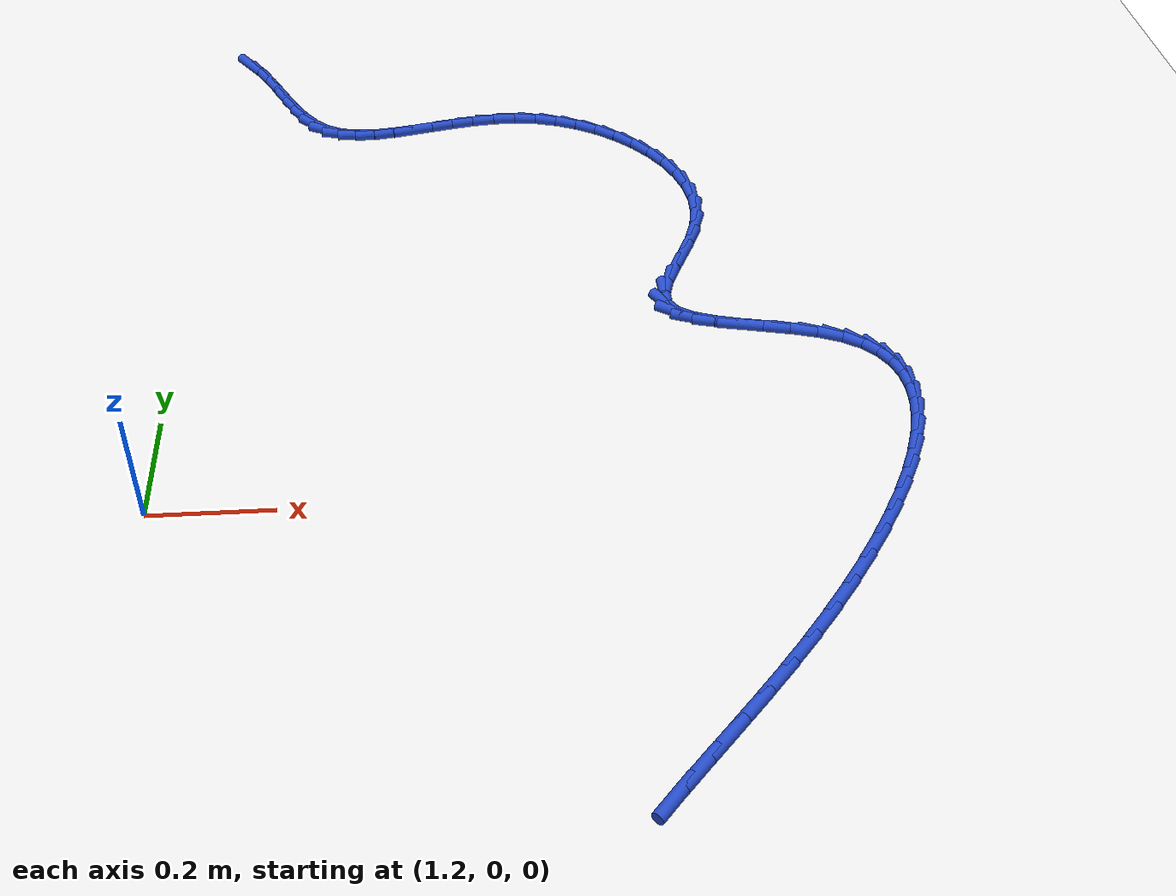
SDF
<sdf version="1.6">
 <world name="default">
  <model name="ground_plane">
   <static>1</static>
   <link name="link">
    <collision name="collision">
     <geometry><plane><normal>0 0 1</normal><size>100 100</size></plane></geometry>
     <surface><friction><ode><mu>100</mu><mu2>50</mu2></ode></friction></surface>
    </collision>
    <visual name="visual">
     <cast_shadows>0</cast_shadows>
     <geometry><plane><normal>0 0 1</normal><size>100 100</size></plane></geometry>
     <material>
      <script><uri>file://media/materials/scripts/gazebo.material</uri><name>Gazebo/WhiteGlow</name></script>
     </material>
    </visual>
   </link>
  </model>
  <model name="line">
   <link name="link_51">
    <pose>1.2606121515067468 1.3050934689308822 0.01 0 1.57 -0.9377124161625547</pose>
    <collision name="collision">
     <geometry><cylinder><radius>0.01</radius><length>0.08</length></cylinder></geometry>
    </collision>
    <visual name="visual">
     <material>
      <script><name>Gazebo/Blue</name><uri>file://media/materials/scripts/gazebo.material</uri></script>
     </material>
     <geometry><cylinder><radius>0.01</radius><length>0.08</length></cylinder></geometry>
    </visual>
   </link>
   <link name="link_52">
    <pose>1.2848149451744901 1.2721128387040617 0.01 0 1.57 -1.0303241424602596</pose>
    <collision name="collision">
     <geometry><cylinder><radius>0.01</radius><length>0.08</length></cylinder></geometry>
    </collision>
    <visual name="visual">
     <material>
      <script><name>Gazebo/Blue</name><uri>file://media/materials/scripts/gazebo.material</uri></script>
     </material>
     <geometry><cylinder><radius>0.01</radius><length>0.08</length></cylinder></geometry>
    </visual>
   </link>
   <link name="link_53">
    <pose>1.3068357372475137 1.235415900966877 0.01 0 1.57 -1.0804538263771792</pose>
    <collision name="collision">
     <geometry><cylinder><radius>0.01</radius><length>0.08</length></cylinder></geometry>
    </collision>
    <visual name="visual">
     <material>
      <script><name>Gazebo/Blue</name><uri>file://media/materials/scripts/gazebo.material</uri></script>
     </material>
     <geometry><cylinder><radius>0.01</radius><length>0.08</length></cylinder></geometry>
    </visual>
   </link>
   <link name="link_54">
    <pose>1.3274808480455298 1.1967422003924517 0.01 0 1.57 -1.0944771639709912</pose>
    <collision name="collision">
     <geometry><cylinder><radius>0.01</radius><length>0.08</length></cylinder></geometry>
    </collision>
    <visual name="visual">
     <material>
      <script><name>Gazebo/Blue</name><uri>file://media/materials/scripts/gazebo.material</uri></script>
     </material>
     <geometry><cylinder><radius>0.01</radius><length>0.08</length></cylinder></geometry>
    </visual>
   </link>
   <link name="link_55">
    <pose>1.3475565978882513 1.1578312816539087 0.01 0 1.57 -1.0733465048747826</pose>
    <collision name="collision">
     <geometry><cylinder><radius>0.01</radius><length>0.08</length></cylinder></geometry>
    </collision>
    <visual name="visual">
     <material>
      <script><name>Gazebo/Blue</name><uri>file://media/materials/scripts/gazebo.material</uri></script>
     </material>
     <geometry><cylinder><radius>0.01</radius><length>0.08</length></cylinder></geometry>
    </visual>
   </link>
   <link name="link_56">
    <pose>1.3678693070953918 1.1204226894243716 0.01 0 1.57 -1.0121593756264433</pose>
    <collision name="collision">
     <geometry><cylinder><radius>0.01</radius><length>0.08</length></cylinder></geometry>
    </collision>
    <visual name="visual">
     <material>
      <script><name>Gazebo/Blue</name><uri>file://media/materials/scripts/gazebo.material</uri></script>
     </material>
     <geometry><cylinder><radius>0.01</radius><length>0.08</length></cylinder></geometry>
    </visual>
   </link>
   <link name="link_57">
    <pose>1.3892252959866644 1.0862559683769637 0.01 0 1.57 -0.8990429343614283</pose>
    <collision name="collision">
     <geometry><cylinder><radius>0.01</radius><length>0.08</length></cylinder></geometry>
    </collision>
    <visual name="visual">
     <material>
      <script><name>Gazebo/Blue</name><uri>file://media/materials/scripts/gazebo.material</uri></script>
     </material>
     <geometry><cylinder><radius>0.01</radius><length>0.08</length></cylinder></geometry>
    </visual>
   </link>
   <link name="link_58">
    <pose>1.412430884881781 1.0570706631848086 0.01 0 1.57 -0.7152165748143586</pose>
    <collision name="collision">
     <geometry><cylinder><radius>0.01</radius><length>0.08</length></cylinder></geometry>
    </collision>
    <visual name="visual">
     <material>
      <script><name>Gazebo/Blue</name><uri>file://media/materials/scripts/gazebo.material</uri></script>
     </material>
     <geometry><cylinder><radius>0.01</radius><length>0.08</length></cylinder></geometry>
    </visual>
   </link>
   <link name="link_59">
    <pose>1.4382923941004557 1.0346063185210292 0.01 0 1.57 -0.45557709242875116</pose>
    <collision name="collision">
     <geometry><cylinder><radius>0.01</radius><length>0.08</length></cylinder></geometry>
    </collision>
    <visual name="visual">
     <material>
      <script><name>Gazebo/Blue</name><uri>file://media/materials/scripts/gazebo.material</uri></script>
     </material>
     <geometry><cylinder><radius>0.01</radius><length>0.08</length></cylinder></geometry>
    </visual>
   </link>
   <link name="link_60">
    <pose>1.467500588903379 1.0202956997544859 0.01 0 1.57 -0.20590621221302952</pose>
    <collision name="collision">
     <geometry><cylinder><radius>0.01</radius><length>0.08</length></cylinder></geometry>
    </collision>
    <visual name="visual">
     <material>
      <script><name>Gazebo/Blue</name><uri>file://media/materials/scripts/gazebo.material</uri></script>
     </material>
     <geometry><cylinder><radius>0.01</radius><length>0.08</length></cylinder></geometry>
    </visual>
   </link>
   <link name="link_61">
    <pose>1.499971093541033 1.0135137028554233 0.01 0 1.57 -0.020512684227536018</pose>
    <collision name="collision">
     <geometry><cylinder><radius>0.01</radius><length>0.08</length></cylinder></geometry>
    </collision>
    <visual name="visual">
     <material>
      <script><name>Gazebo/Blue</name><uri>file://media/materials/scripts/gazebo.material</uri></script>
     </material>
     <geometry><cylinder><radius>0.01</radius><length>0.08</length></cylinder></geometry>
    </visual>
   </link>
   <link name="link_62">
    <pose>1.5353007443059836 1.0127888952234068 0.01 0 1.57 0.10176123029134934</pose>
    <collision name="collision">
     <geometry><cylinder><radius>0.01</radius><length>0.08</length></cylinder></geometry>
    </collision>
    <visual name="visual">
     <material>
      <script><name>Gazebo/Blue</name><uri>file://media/materials/scripts/gazebo.material</uri></script>
     </material>
     <geometry><cylinder><radius>0.01</radius><length>0.08</length></cylinder></geometry>
    </visual>
   </link>
   <link name="link_63">
    <pose>1.5730853946899688 1.0166472350866085 0.01 0 1.57 0.17315389826971428</pose>
    <collision name="collision">
     <geometry><cylinder><radius>0.01</radius><length>0.08</length></cylinder></geometry>
    </collision>
    <visual name="visual">
     <material>
      <script><name>Gazebo/Blue</name><uri>file://media/materials/scripts/gazebo.material</uri></script>
     </material>
     <geometry><cylinder><radius>0.01</radius><length>0.08</length></cylinder></geometry>
    </visual>
   </link>
   <link name="link_64">
    <pose>1.612920898184726 1.0236146806732014 0.01 0 1.57 0.20447989285121526</pose>
    <collision name="collision">
     <geometry><cylinder><radius>0.01</radius><length>0.08</length></cylinder></geometry>
    </collision>
    <visual name="visual">
     <material>
      <script><name>Gazebo/Blue</name><uri>file://media/materials/scripts/gazebo.material</uri></script>
     </material>
     <geometry><cylinder><radius>0.01</radius><length>0.08</length></cylinder></geometry>
    </visual>
   </link>
   <link name="link_65">
    <pose>1.6544031082819934 1.032217190211358 0.01 0 1.57 0.2023098656296809</pose>
    <collision name="collision">
     <geometry><cylinder><radius>0.01</radius><length>0.08</length></cylinder></geometry>
    </collision>
    <visual name="visual">
     <material>
      <script><name>Gazebo/Blue</name><uri>file://media/materials/scripts/gazebo.material</uri></script>
     </material>
     <geometry><cylinder><radius>0.01</radius><length>0.08</length></cylinder></geometry>
    </visual>
   </link>
   <link name="link_66">
    <pose>1.6971278784735082 1.0409807219292506 0.01 0 1.57 0.1693888432417191</pose>
    <collision name="collision">
     <geometry><cylinder><radius>0.01</radius><length>0.08</length></cylinder></geometry>
    </collision>
    <visual name="visual">
     <material>
      <script><name>Gazebo/Blue</name><uri>file://media/materials/scripts/gazebo.material</uri></script>
     </material>
     <geometry><cylinder><radius>0.01</radius><length>0.08</length></cylinder></geometry>
    </visual>
   </link>
   <link name="link_67">
    <pose>1.7406910622510083 1.0484312340550526 0.01 0 1.57 0.10559937835502822</pose>
    <collision name="collision">
     <geometry><cylinder><radius>0.01</radius><length>0.08</length></cylinder></geometry>
    </collision>
    <visual name="visual">
     <material>
      <script><name>Gazebo/Blue</name><uri>file://media/materials/scripts/gazebo.material</uri></script>
     </material>
     <geometry><cylinder><radius>0.01</radius><length>0.08</length></cylinder></geometry>
    </visual>
   </link>
   <link name="link_68">
    <pose>1.7846885131062316 1.0530946848169362 0.01 0 1.57 0.009138283427357157</pose>
    <collision name="collision">
     <geometry><cylinder><radius>0.01</radius><length>0.08</length></cylinder></geometry>
    </collision>
    <visual name="visual">
     <material>
      <script><name>Gazebo/Blue</name><uri>file://media/materials/scripts/gazebo.material</uri></script>
     </material>
     <geometry><cylinder><radius>0.01</radius><length>0.08</length></cylinder></geometry>
    </visual>
   </link>
   <link name="link_69">
    <pose>1.8287160845309156 1.0534970324430741 0.01 0 1.57 -0.12030329682297947</pose>
    <collision name="collision">
     <geometry><cylinder><radius>0.01</radius><length>0.08</length></cylinder></geometry>
    </collision>
    <visual name="visual">
     <material>
      <script><name>Gazebo/Blue</name><uri>file://media/materials/scripts/gazebo.material</uri></script>
     </material>
     <geometry><cylinder><radius>0.01</radius><length>0.08</length></cylinder></geometry>
    </visual>
   </link>
   <link name="link_70">
    <pose>1.8723631310332869 1.04822066953003 0.01 0 1.57 -0.25961076998670213</pose>
    <collision name="collision">
     <geometry><cylinder><radius>0.01</radius><length>0.08</length></cylinder></geometry>
    </collision>
    <visual name="visual">
     <material>
      <script><name>Gazebo/Blue</name><uri>file://media/materials/scripts/gazebo.material</uri></script>
     </material>
     <geometry><cylinder><radius>0.01</radius><length>0.08</length></cylinder></geometry>
    </visual>
   </link>
   <link name="link_71">
    <pose>1.9151014069432761 1.0368691778762829 0.01 0 1.57 -0.3900071101279612</pose>
    <collision name="collision">
     <geometry><cylinder><radius>0.01</radius><length>0.08</length></cylinder></geometry>
    </collision>
    <visual name="visual">
     <material>
      <script><name>Gazebo/Blue</name><uri>file://media/materials/scripts/gazebo.material</uri></script>
     </material>
     <geometry><cylinder><radius>0.01</radius><length>0.08</length></cylinder></geometry>
    </visual>
   </link>
   <link name="link_72">
    <pose>1.9563004473098067 1.0199337674072881 0.01 0 1.57 -0.5132935983335062</pose>
    <collision name="collision">
     <geometry><cylinder><radius>0.01</radius><length>0.08</length></cylinder></geometry>
    </collision>
    <visual name="visual">
     <material>
      <script><name>Gazebo/Blue</name><uri>file://media/materials/scripts/gazebo.material</uri></script>
     </material>
     <geometry><cylinder><radius>0.01</radius><length>0.08</length></cylinder></geometry>
    </visual>
   </link>
   <link name="link_73">
    <pose>1.9953263833367356 0.997935205570227 0.01 0 1.57 -0.6323963527957505</pose>
    <collision name="collision">
     <geometry><cylinder><radius>0.01</radius><length>0.08</length></cylinder></geometry>
    </collision>
    <visual name="visual">
     <material>
      <script><name>Gazebo/Blue</name><uri>file://media/materials/scripts/gazebo.material</uri></script>
     </material>
     <geometry><cylinder><radius>0.01</radius><length>0.08</length></cylinder></geometry>
    </visual>
   </link>
   <link name="link_74">
    <pose>2.0315453462279214 0.9713942598122807 0.01 0 1.57 -0.7504339712511151</pose>
    <collision name="collision">
     <geometry><cylinder><radius>0.01</radius><length>0.08</length></cylinder></geometry>
    </collision>
    <visual name="visual">
     <material>
      <script><name>Gazebo/Blue</name><uri>file://media/materials/scripts/gazebo.material</uri></script>
     </material>
     <geometry><cylinder><radius>0.01</radius><length>0.08</length></cylinder></geometry>
    </visual>
   </link>
   <link name="link_75">
    <pose>2.064323467187221 0.9408316975806303 0.01 0 1.57 -0.870586939127695</pose>
    <collision name="collision">
     <geometry><cylinder><radius>0.01</radius><length>0.08</length></cylinder></geometry>
    </collision>
    <visual name="visual">
     <material>
      <script><name>Gazebo/Blue</name><uri>file://media/materials/scripts/gazebo.material</uri></script>
     </material>
     <geometry><cylinder><radius>0.01</radius><length>0.08</length></cylinder></geometry>
    </visual>
   </link>
   <link name="link_76">
    <pose>2.093026877418492 0.9067682863224578 0.01 0 1.57 -0.9960062003698397</pose>
    <collision name="collision">
     <geometry><cylinder><radius>0.01</radius><length>0.08</length></cylinder></geometry>
    </collision>
    <visual name="visual">
     <material>
      <script><name>Gazebo/Blue</name><uri>file://media/materials/scripts/gazebo.material</uri></script>
     </material>
     <geometry><cylinder><radius>0.01</radius><length>0.08</length></cylinder></geometry>
    </visual>
   </link>
   <link name="link_77">
    <pose>2.117021708125594 0.8697247934849438 0.01 0 1.57 -1.1296524678501003</pose>
    <collision name="collision">
     <geometry><cylinder><radius>0.01</radius><length>0.08</length></cylinder></geometry>
    </collision>
    <visual name="visual">
     <material>
      <script><name>Gazebo/Blue</name><uri>file://media/materials/scripts/gazebo.material</uri></script>
     </material>
     <geometry><cylinder><radius>0.01</radius><length>0.08</length></cylinder></geometry>
    </visual>
   </link>
   <link name="link_78">
    <pose>2.1356740905123837 0.8302219865152702 0.01 0 1.57 -1.2739541577825026</pose>
    <collision name="collision">
     <geometry><cylinder><radius>0.01</radius><length>0.08</length></cylinder></geometry>
    </collision>
    <visual name="visual">
     <material>
      <script><name>Gazebo/Blue</name><uri>file://media/materials/scripts/gazebo.material</uri></script>
     </material>
     <geometry><cylinder><radius>0.01</radius><length>0.08</length></cylinder></geometry>
    </visual>
   </link>
   <link name="link_79">
    <pose>2.148350155782719 0.788780632860618 0.01 0 1.57 -1.4301995120350826</pose>
    <collision name="collision">
     <geometry><cylinder><radius>0.01</radius><length>0.08</length></cylinder></geometry>
    </collision>
    <visual name="visual">
     <material>
      <script><name>Gazebo/Blue</name><uri>file://media/materials/scripts/gazebo.material</uri></script>
     </material>
     <geometry><cylinder><radius>0.01</radius><length>0.08</length></cylinder></geometry>
    </visual>
   </link>
   <link name="link_80">
    <pose>2.154416035140458 0.7459214999681686 0.01 0 1.57 1.5438768905614026</pose>
    <collision name="collision">
     <geometry><cylinder><radius>0.01</radius><length>0.08</length></cylinder></geometry>
    </collision>
    <visual name="visual">
     <material>
      <script><name>Gazebo/Blue</name><uri>file://media/materials/scripts/gazebo.material</uri></script>
     </material>
     <geometry><cylinder><radius>0.01</radius><length>0.08</length></cylinder></geometry>
    </visual>
   </link>
   <link name="link_81">
    <pose>2.153237859789458 0.7021653552851034 0.01 0 1.57 1.3686569108938833</pose>
    <collision name="collision">
     <geometry><cylinder><radius>0.01</radius><length>0.08</length></cylinder></geometry>
    </collision>
    <visual name="visual">
     <material>
      <script><name>Gazebo/Blue</name><uri>file://media/materials/scripts/gazebo.material</uri></script>
     </material>
     <geometry><cylinder><radius>0.01</radius><length>0.08</length></cylinder></geometry>
    </visual>
   </link>
   <link name="link_82">
    <pose>2.1441937126423034 0.6580342889850999 0.01 0 1.57 1.2171864026832881</pose>
    <collision name="collision">
     <geometry><cylinder><radius>0.01</radius><length>0.08</length></cylinder></geometry>
    </collision>
    <visual name="visual">
     <material>
      <script><name>Gazebo/Blue</name><uri>file://media/materials/scripts/gazebo.material</uri></script>
     </material>
     <geometry><cylinder><radius>0.01</radius><length>0.08</length></cylinder></geometry>
    </visual>
   </link>
   <link name="link_83">
    <pose>2.1280133832654693 0.6141999881110124 0.01 0 1.57 1.1314763735763547</pose>
    <collision name="collision">
     <geometry><cylinder><radius>0.01</radius><length>0.08</length></cylinder></geometry>
    </collision>
    <visual name="visual">
     <material>
      <script><name>Gazebo/Blue</name><uri>file://media/materials/scripts/gazebo.material</uri></script>
     </material>
     <geometry><cylinder><radius>0.01</radius><length>0.08</length></cylinder></geometry>
    </visual>
   </link>
   <link name="link_84">
    <pose>2.1080025502466775 0.5716192200016408 0.01 0 1.57 1.1056179926656773</pose>
    <collision name="collision">
     <geometry><cylinder><radius>0.01</radius><length>0.08</length></cylinder></geometry>
    </collision>
    <visual name="visual">
     <material>
      <script><name>Gazebo/Blue</name><uri>file://media/materials/scripts/gazebo.material</uri></script>
     </material>
     <geometry><cylinder><radius>0.01</radius><length>0.08</length></cylinder></geometry>
    </visual>
   </link>
   <link name="link_85">
    <pose>2.087756075524592 0.5312807566646915 0.01 0 1.57 1.143716420703692</pose>
    <collision name="collision">
     <geometry><cylinder><radius>0.01</radius><length>0.08</length></cylinder></geometry>
    </collision>
    <visual name="visual">
     <material>
      <script><name>Gazebo/Blue</name><uri>file://media/materials/scripts/gazebo.material</uri></script>
     </material>
     <geometry><cylinder><radius>0.01</radius><length>0.08</length></cylinder></geometry>
    </visual>
   </link>
   <link name="link_86">
    <pose>2.070868821037877 0.49417337010787293 0.01 0 1.57 1.2774740294516247</pose>
    <collision name="collision">
     <geometry><cylinder><radius>0.01</radius><length>0.08</length></cylinder></geometry>
    </collision>
    <visual name="visual">
     <material>
      <script><name>Gazebo/Blue</name><uri>file://media/materials/scripts/gazebo.material</uri></script>
     </material>
     <geometry><cylinder><radius>0.01</radius><length>0.08</length></cylinder></geometry>
    </visual>
   </link>
   <link name="link_87">
    <pose>2.0609356487251964 0.46128583233889275 0.01 0 1.57 -1.5485530344239646</pose>
    <collision name="collision">
     <geometry><cylinder><radius>0.01</radius><length>0.08</length></cylinder></geometry>
    </collision>
    <visual name="visual">
     <material>
      <script><name>Gazebo/Blue</name><uri>file://media/materials/scripts/gazebo.material</uri></script>
     </material>
     <geometry><cylinder><radius>0.01</radius><length>0.08</length></cylinder></geometry>
    </visual>
   </link>
   <link name="link_88">
    <pose>2.061551420525215 0.4336069153654584 0.01 0 1.57 -0.9916579685379145</pose>
    <collision name="collision">
     <geometry><cylinder><radius>0.01</radius><length>0.08</length></cylinder></geometry>
    </collision>
    <visual name="visual">
     <material>
      <script><name>Gazebo/Blue</name><uri>file://media/materials/scripts/gazebo.material</uri></script>
     </material>
     <geometry><cylinder><radius>0.01</radius><length>0.08</length></cylinder></geometry>
    </visual>
   </link>
   <link name="link_89">
    <pose>2.07573628310556 0.41191545490653836 0.01 0 1.57 -0.5540136928658005</pose>
    <collision name="collision">
     <geometry><cylinder><radius>0.01</radius><length>0.08</length></cylinder></geometry>
    </collision>
    <visual name="visual">
     <material>
      <script><name>Gazebo/Blue</name><uri>file://media/materials/scripts/gazebo.material</uri></script>
     </material>
     <geometry><cylinder><radius>0.01</radius><length>0.08</length></cylinder></geometry>
    </visual>
   </link>
   <link name="link_90">
    <pose>2.1023302421599177 0.3954633335502112 0.01 0 1.57 -0.3375984378309357</pose>
    <collision name="collision">
     <geometry><cylinder><radius>0.01</radius><length>0.08</length></cylinder></geometry>
    </collision>
    <visual name="visual">
     <material>
      <script><name>Gazebo/Blue</name><uri>file://media/materials/scripts/gazebo.material</uri></script>
     </material>
     <geometry><cylinder><radius>0.01</radius><length>0.08</length></cylinder></geometry>
    </visual>
   </link>
   <link name="link_91">
    <pose>2.138325790741731 0.38282756066186796 0.01 0 1.57 -0.2371919191290258</pose>
    <collision name="collision">
     <geometry><cylinder><radius>0.01</radius><length>0.08</length></cylinder></geometry>
    </collision>
    <visual name="visual">
     <material>
      <script><name>Gazebo/Blue</name><uri>file://media/materials/scripts/gazebo.material</uri></script>
     </material>
     <geometry><cylinder><radius>0.01</radius><length>0.08</length></cylinder></geometry>
    </visual>
   </link>
   <link name="link_92">
    <pose>2.1807072509182146 0.37258216084799284 0.01 0 1.57 -0.20014012646399781</pose>
    <collision name="collision">
     <geometry><cylinder><radius>0.01</radius><length>0.08</length></cylinder></geometry>
    </collision>
    <visual name="visual">
     <material>
      <script><name>Gazebo/Blue</name><uri>file://media/materials/scripts/gazebo.material</uri></script>
     </material>
     <geometry><cylinder><radius>0.01</radius><length>0.08</length></cylinder></geometry>
    </visual>
   </link>
   <link name="link_93">
    <pose>2.226458944756585 0.3633011587150703 0.01 0 1.57 -0.20824379675701934</pose>
    <collision name="collision">
     <geometry><cylinder><radius>0.01</radius><length>0.08</length></cylinder></geometry>
    </collision>
    <visual name="visual">
     <material>
      <script><name>Gazebo/Blue</name><uri>file://media/materials/scripts/gazebo.material</uri></script>
     </material>
     <geometry><cylinder><radius>0.01</radius><length>0.08</length></cylinder></geometry>
    </visual>
   </link>
   <link name="link_94">
    <pose>2.272565194324058 0.3535585788695846 0.01 0 1.57 -0.26156413203831097</pose>
    <collision name="collision">
     <geometry><cylinder><radius>0.01</radius><length>0.08</length></cylinder></geometry>
    </collision>
    <visual name="visual">
     <material>
      <script><name>Gazebo/Blue</name><uri>file://media/materials/scripts/gazebo.material</uri></script>
     </material>
     <geometry><cylinder><radius>0.01</radius><length>0.08</length></cylinder></geometry>
    </visual>
   </link>
   <link name="link_95">
    <pose>2.3160103216878483 0.34192844591802013 0.01 0 1.57 -0.37632695352866635</pose>
    <collision name="collision">
     <geometry><cylinder><radius>0.01</radius><length>0.08</length></cylinder></geometry>
    </collision>
    <visual name="visual">
     <material>
      <script><name>Gazebo/Blue</name><uri>file://media/materials/scripts/gazebo.material</uri></script>
     </material>
     <geometry><cylinder><radius>0.01</radius><length>0.08</length></cylinder></geometry>
    </visual>
   </link>
   <link name="link_96">
    <pose>2.3537998172287176 0.32699555143207015 0.01 0 1.57 -0.5589169516007765</pose>
    <collision name="collision">
     <geometry><cylinder><radius>0.01</radius><length>0.08</length></cylinder></geometry>
    </collision>
    <visual name="visual">
     <material>
      <script><name>Gazebo/Blue</name><uri>file://media/materials/scripts/gazebo.material</uri></script>
     </material>
     <geometry><cylinder><radius>0.01</radius><length>0.08</length></cylinder></geometry>
    </visual>
   </link>
   <link name="link_97">
    <pose>2.3841964875515087 0.30798420321184766 0.01 0 1.57 -0.77823316711473</pose>
    <collision name="collision">
     <geometry><cylinder><radius>0.01</radius><length>0.08</length></cylinder></geometry>
    </collision>
    <visual name="visual">
     <material>
      <script><name>Gazebo/Blue</name><uri>file://media/materials/scripts/gazebo.material</uri></script>
     </material>
     <geometry><cylinder><radius>0.01</radius><length>0.08</length></cylinder></geometry>
    </visual>
   </link>
   <link name="link_98">
    <pose>2.4074046647398517 0.28510623870816065 0.01 0 1.57 -1.0160115853193539</pose>
    <collision name="collision">
     <geometry><cylinder><radius>0.01</radius><length>0.08</length></cylinder></geometry>
    </collision>
    <visual name="visual">
     <material>
      <script><name>Gazebo/Blue</name><uri>file://media/materials/scripts/gazebo.material</uri></script>
     </material>
     <geometry><cylinder><radius>0.01</radius><length>0.08</length></cylinder></geometry>
    </visual>
   </link>
   <link name="link_99">
    <pose>2.4237948418208757 0.2586580108006818 0.01 0 1.57 -1.2479775400528799</pose>
    <collision name="collision">
     <geometry><cylinder><radius>0.01</radius><length>0.08</length></cylinder></geometry>
    </collision>
    <visual name="visual">
     <material>
      <script><name>Gazebo/Blue</name><uri>file://media/materials/scripts/gazebo.material</uri></script>
     </material>
     <geometry><cylinder><radius>0.01</radius><length>0.08</length></cylinder></geometry>
    </visual>
   </link>
   <link name="link_100">
    <pose>2.4337375118217097 0.2289358723690837 0.01 0 1.57 -1.4531255803950218</pose>
    <collision name="collision">
     <geometry><cylinder><radius>0.01</radius><length>0.08</length></cylinder></geometry>
    </collision>
    <visual name="visual">
     <material>
      <script><name>Gazebo/Blue</name><uri>file://media/materials/scripts/gazebo.material</uri></script>
     </material>
     <geometry><cylinder><radius>0.01</radius><length>0.08</length></cylinder></geometry>
    </visual>
   </link>
   <link name="link_101">
    <pose>2.4376031677694843 0.19623617629303877 0.01 0 1.57 1.518813291173014</pose>
    <collision name="collision">
     <geometry><cylinder><radius>0.01</radius><length>0.08</length></cylinder></geometry>
    </collision>
    <visual name="visual">
     <material>
      <script><name>Gazebo/Blue</name><uri>file://media/materials/scripts/gazebo.material</uri></script>
     </material>
     <geometry><cylinder><radius>0.01</radius><length>0.08</length></cylinder></geometry>
    </visual>
   </link>
   <link name="link_102">
    <pose>2.4357623026913267 0.16085527545221948 0.01 0 1.57 1.3829986000143126</pose>
    <collision name="collision">
     <geometry><cylinder><radius>0.01</radius><length>0.08</length></cylinder></geometry>
    </collision>
    <visual name="visual">
     <material>
      <script><name>Gazebo/Blue</name><uri>file://media/materials/scripts/gazebo.material</uri></script>
     </material>
     <geometry><cylinder><radius>0.01</radius><length>0.08</length></cylinder></geometry>
    </visual>
   </link>
   <link name="link_103">
    <pose>2.428585409614367 0.12308952272629858 0.01 0 1.57 1.275059892854206</pose>
    <collision name="collision">
     <geometry><cylinder><radius>0.01</radius><length>0.08</length></cylinder></geometry>
    </collision>
    <visual name="visual">
     <material>
      <script><name>Gazebo/Blue</name><uri>file://media/materials/scripts/gazebo.material</uri></script>
     </material>
     <geometry><cylinder><radius>0.01</radius><length>0.08</length></cylinder></geometry>
    </visual>
   </link>
   <link name="link_104">
    <pose>2.4164429815657336 0.08323527099494848 0.01 0 1.57 1.1886575848082208</pose>
    <collision name="collision">
     <geometry><cylinder><radius>0.01</radius><length>0.08</length></cylinder></geometry>
    </collision>
    <visual name="visual">
     <material>
      <script><name>Gazebo/Blue</name><uri>file://media/materials/scripts/gazebo.material</uri></script>
     </material>
     <geometry><cylinder><radius>0.01</radius><length>0.08</length></cylinder></geometry>
    </visual>
   </link>
   <link name="link_105">
    <pose>2.3997055115725576 0.04158887313784171 0.01 0 1.57 1.1185066830676071</pose>
    <collision name="collision">
     <geometry><cylinder><radius>0.01</radius><length>0.08</length></cylinder></geometry>
    </collision>
    <visual name="visual">
     <material>
      <script><name>Gazebo/Blue</name><uri>file://media/materials/scripts/gazebo.material</uri></script>
     </material>
     <geometry><cylinder><radius>0.01</radius><length>0.08</length></cylinder></geometry>
    </visual>
   </link>
   <link name="link_106">
    <pose>2.3787434926619664 -0.0015533179653490908 0.01 0 1.57 1.060569666611481</pose>
    <collision name="collision">
     <geometry><cylinder><radius>0.01</radius><length>0.08</length></cylinder></geometry>
    </collision>
    <visual name="visual">
     <material>
      <script><name>Gazebo/Blue</name><uri>file://media/materials/scripts/gazebo.material</uri></script>
     </material>
     <geometry><cylinder><radius>0.01</radius><length>0.08</length></cylinder></geometry>
    </visual>
   </link>
   <link name="link_107">
    <pose>2.35392741786109 -0.04589494943495149 0.01 0 1.57 1.0118523804520605</pose>
    <collision name="collision">
     <geometry><cylinder><radius>0.01</radius><length>0.08</length></cylinder></geometry>
    </collision>
    <visual name="visual">
     <material>
      <script><name>Gazebo/Blue</name><uri>file://media/materials/scripts/gazebo.material</uri></script>
     </material>
     <geometry><cylinder><radius>0.01</radius><length>0.08</length></cylinder></geometry>
    </visual>
   </link>
   <link name="link_108">
    <pose>2.3256277801970575 -0.09113966839129288 0.01 0 1.57 0.9701423461148697</pose>
    <collision name="collision">
     <geometry><cylinder><radius>0.01</radius><length>0.08</length></cylinder></geometry>
    </collision>
    <visual name="visual">
     <material>
      <script><name>Gazebo/Blue</name><uri>file://media/materials/scripts/gazebo.material</uri></script>
     </material>
     <geometry><cylinder><radius>0.01</radius><length>0.08</length></cylinder></geometry>
    </visual>
   </link>
   <link name="link_109">
    <pose>2.294215072696997 -0.1369911219547007 0.01 0 1.57 0.9337886236395246</pose>
    <collision name="collision">
     <geometry><cylinder><radius>0.01</radius><length>0.08</length></cylinder></geometry>
    </collision>
    <visual name="visual">
     <material>
      <script><name>Gazebo/Blue</name><uri>file://media/materials/scripts/gazebo.material</uri></script>
     </material>
     <geometry><cylinder><radius>0.01</radius><length>0.08</length></cylinder></geometry>
    </visual>
   </link>
   <link name="link_110">
    <pose>2.2600597883880393 -0.18315295724550246 0.01 0 1.57 0.9015372329377411</pose>
    <collision name="collision">
     <geometry><cylinder><radius>0.01</radius><length>0.08</length></cylinder></geometry>
    </collision>
    <visual name="visual">
     <material>
      <script><name>Gazebo/Blue</name><uri>file://media/materials/scripts/gazebo.material</uri></script>
     </material>
     <geometry><cylinder><radius>0.01</radius><length>0.08</length></cylinder></geometry>
    </visual>
   </link>
   <link name="link_111">
    <pose>2.2235324202973135 -0.2293288213840256 0.01 0 1.57 0.8724127023436042</pose>
    <collision name="collision">
     <geometry><cylinder><radius>0.01</radius><length>0.08</length></cylinder></geometry>
    </collision>
    <visual name="visual">
     <material>
      <script><name>Gazebo/Blue</name><uri>file://media/materials/scripts/gazebo.material</uri></script>
     </material>
     <geometry><cylinder><radius>0.01</radius><length>0.08</length></cylinder></geometry>
    </visual>
   </link>
   <link name="link_112">
    <pose>2.185003461451947 -0.27522236149059753 0.01 0 1.57 0.8456330350547206</pose>
    <collision name="collision">
     <geometry><cylinder><radius>0.01</radius><length>0.08</length></cylinder></geometry>
    </collision>
    <visual name="visual">
     <material>
      <script><name>Gazebo/Blue</name><uri>file://media/materials/scripts/gazebo.material</uri></script>
     </material>
     <geometry><cylinder><radius>0.01</radius><length>0.08</length></cylinder></geometry>
    </visual>
   </link>
   <link name="link_113">
    <pose>2.1448434048790705 -0.3205372246855459 0.01 0 1.57 0.8212628736010229</pose>
    <collision name="collision">
     <geometry><cylinder><radius>0.01</radius><length>0.08</length></cylinder></geometry>
    </collision>
    <visual name="visual">
     <material>
      <script><name>Gazebo/Blue</name><uri>file://media/materials/scripts/gazebo.material</uri></script>
     </material>
     <geometry><cylinder><radius>0.01</radius><length>0.08</length></cylinder></geometry>
    </visual>
   </link>
   <link name="link_114">
    <pose>2.1034616684805143 -0.3649990357605341 0.01 0 1.57 0.8033167200714534</pose>
    <collision name="collision">
     <geometry><cylinder><radius>0.01</radius><length>0.08</length></cylinder></geometry>
    </collision>
    <visual name="visual">
     <material>
      <script><name>Gazebo/Blue</name><uri>file://media/materials/scripts/gazebo.material</uri></script>
     </material>
     <geometry><cylinder><radius>0.01</radius><length>0.08</length></cylinder></geometry>
    </visual>
   </link>
   <link name="link_115">
    <pose>2.0615171733449897 -0.4084742934106255 0.01 0 1.57 0.7932511280906424</pose>
    <collision name="collision">
     <geometry><cylinder><radius>0.01</radius><length>0.08</length></cylinder></geometry>
    </collision>
    <visual name="visual">
     <material>
      <script><name>Gazebo/Blue</name><uri>file://media/materials/scripts/gazebo.material</uri></script>
     </material>
     <geometry><cylinder><radius>0.01</radius><length>0.08</length></cylinder></geometry>
    </visual>
   </link>
   <link name="link_116">
    <pose>2.0197673018047015 -0.45088508928694077 0.01 0 1.57 0.7911365941599634</pose>
    <collision name="collision">
     <geometry><cylinder><radius>0.01</radius><length>0.08</length></cylinder></geometry>
    </collision>
    <visual name="visual">
     <material>
      <script><name>Gazebo/Blue</name><uri>file://media/materials/scripts/gazebo.material</uri></script>
     </material>
     <geometry><cylinder><radius>0.01</radius><length>0.08</length></cylinder></geometry>
    </visual>
   </link>
   <link name="link_117">
    <pose>1.9789696766076048 -0.49215365078358053 0.01 0 1.57 0.7975386232304864</pose>
    <collision name="collision">
     <geometry><cylinder><radius>0.01</radius><length>0.08</length></cylinder></geometry>
    </collision>
    <visual name="visual">
     <material>
      <script><name>Gazebo/Blue</name><uri>file://media/materials/scripts/gazebo.material</uri></script>
     </material>
     <geometry><cylinder><radius>0.01</radius><length>0.08</length></cylinder></geometry>
    </visual>
   </link>
   <link name="link_118">
    <pose>1.939881920501658 -0.5322022052946425 0.01 0 1.57 0.8136576050398935</pose>
    <collision name="collision">
     <geometry><cylinder><radius>0.01</radius><length>0.08</length></cylinder></geometry>
    </collision>
    <visual name="visual">
     <material>
      <script><name>Gazebo/Blue</name><uri>file://media/materials/scripts/gazebo.material</uri></script>
     </material>
     <geometry><cylinder><radius>0.01</radius><length>0.08</length></cylinder></geometry>
    </visual>
   </link>
  </model>
 </world>
</sdf>
